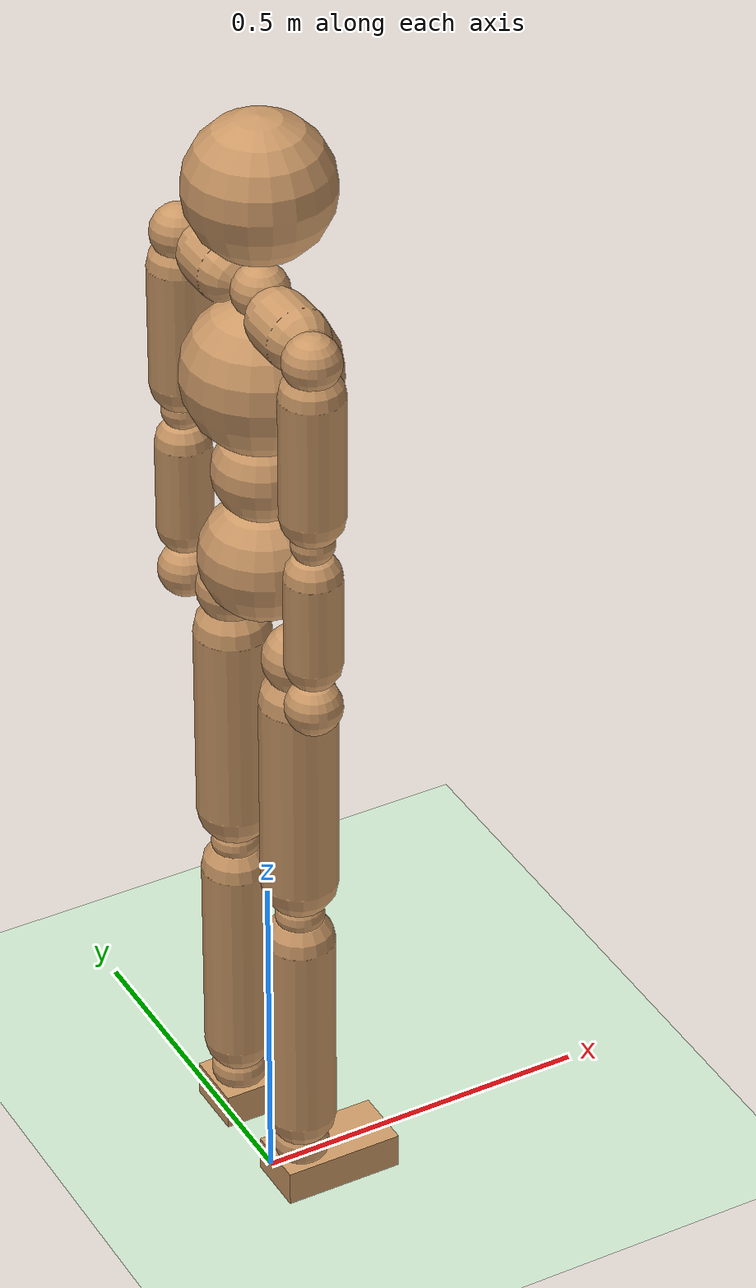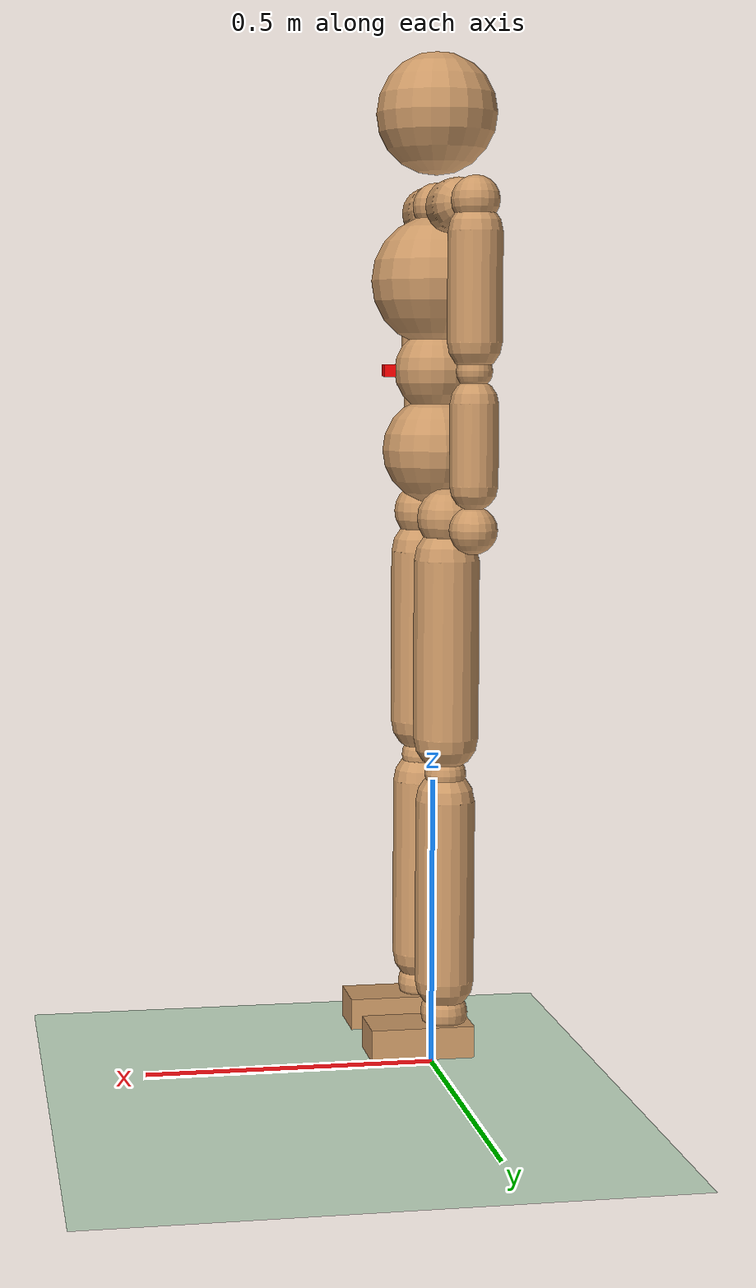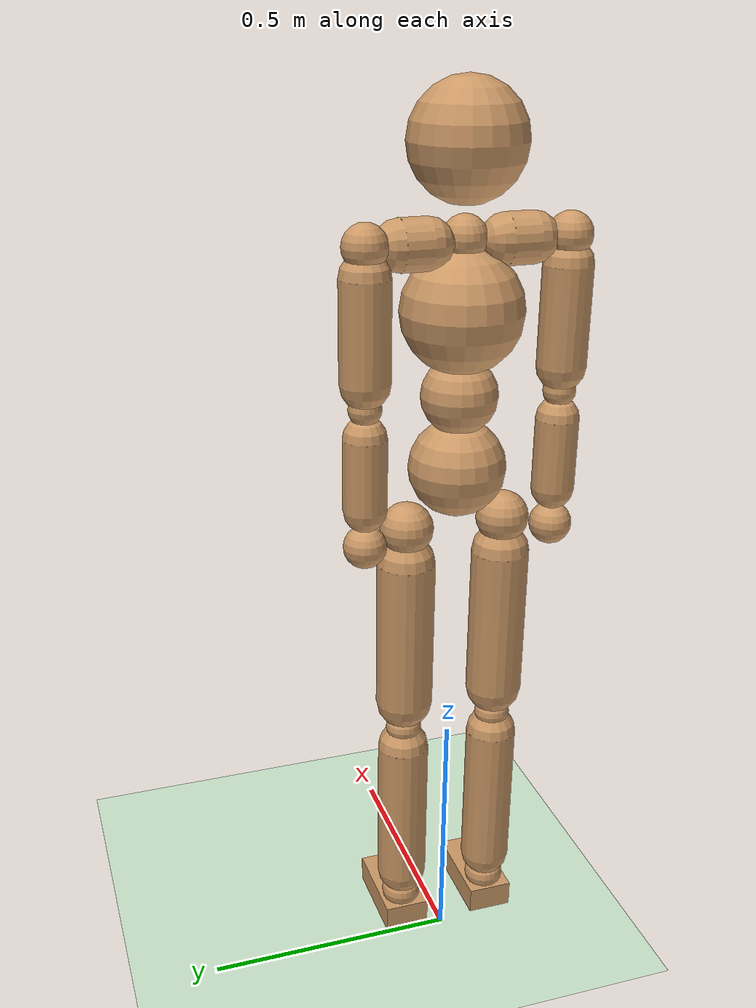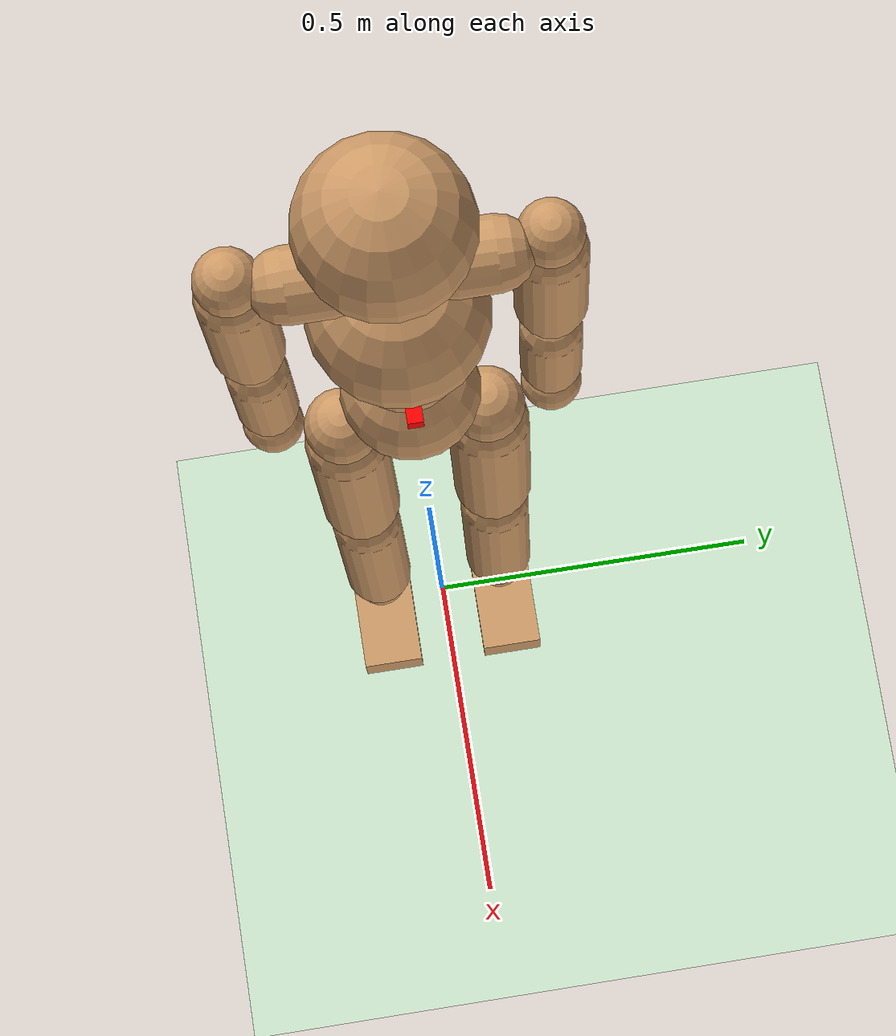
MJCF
<mujoco model="humanoid">
    <compiler angle="degree" inertiafromgeom="true"/>
    <default>
        <joint limited="true" armature="0.02" damping="5" stiffness="10"/>
        <geom conaffinity="1" condim="1" contype="1" margin="0.001" material="geom" rgba="0.8 0.6 .4 1"/>
        <site material="geom" rgba="0.8 0.6 .4 1"/>
        <motor ctrllimited="true" ctrlrange="-1.0 1.0"/>
    </default>
    <option integrator="RK4" iterations="50" solver="PGS" timestep="0.002">
    </option>
    <asset>
        <texture builtin="gradient" height="100" rgb1=".4 .5 .6" rgb2="0 0 0" type="skybox" width="100"/>
        <texture builtin="flat" height="1278" mark="cross" markrgb="1 1 1" name="texgeom" random="0.01" rgb1="0.8 0.6 0.4" rgb2="0.8 0.6 0.4" type="cube" width="127"/>
        <texture builtin="checker" height="100" name="texplane" rgb1="0 0 0" rgb2="0.8 0.8 0.8" type="2d" width="100"/>
        <material name="MatPlane" reflectance="0.5" shininess="1" specular="1" texrepeat="60 60" texture="texplane"/>
        <material name="geom" texture="texgeom" texuniform="true"/>
    </asset>
    <worldbody>
        <geom condim="3" friction="1 .1 .1" material="MatPlane" name="floor" pos="0 0 0" rgba="0.8 0.9 0.8 1" size="20 20 0.125" type="plane"/>
        <body name="root" pos="0 0 1">
            <geom name="root" mass="2.5" pos="0 0 0.07" size=".09" type="sphere"/>
            <light name="tracking_light" pos="0 0 7" dir="0 0 -1" mode="trackcom"/>
            <camera name="back" pos="0 3 2.4" xyaxes="-1 0 0 0 -1 2" mode="trackcom"/>
            <camera name="side" pos="-3 0 2.4" xyaxes="0 -1 0 1 0 2" mode="trackcom"/>
            <joint armature="0" damping="0" limited="false" name="root" pos="0 0 0" stiffness="0" type="free"/>
            <site name="joint_waist" pos="0 0 0.205" size="0.07" type="sphere"/>
            <site name="joint_front_x" rgba='1 0 0 1' pos="0.08 0 0.205" size="0.01 0.01 0.01" type="box"/>
            <body name="chest" pos="0 0 0.236151">
                <geom name="chest" mass="3.0" pos="0 0 0.12" size=".11" type="sphere"/>
                <joint name="chest_x" axis="1 0 0" pos="0 0 0" range="-68.75 68.75" type="hinge"/>
                <joint name="chest_y" axis="0 1 0" pos="0 0 0" range="-68.75 68.75" type="hinge"/>
                <joint name="chest_z" axis="0 0 1" pos="0 0 0" range="-68.75 68.75" type="hinge"/>
                <body name="neck" pos="0 0 0.223894">
                    <geom name="neck" mass="2.0" pos="0 0 0.175" size=".1025" type="sphere"/>
                    <joint name="neck_x" axis="1 0 0" pos="0 0 0" range="-40 40" type="hinge"/>
                    <joint name="neck_y" axis="0 1 0" pos="0 0 0" range="-57.3 57.3" type="hinge"/>
                    <joint name="neck_z" axis="0 0 1" pos="0 0 0" range="-57.3 57.3" type="hinge"/>
                    <site name="joint_neck" pos="0 0 0.02" size="0.04" type="sphere"/>
                </body>
                <site pos="-0.011 -0.095 0.24" euler="-90 0 0" name="right_clavicle" size="0.045 0.025" type="capsule"/>
                <body name="right_shoulder" pos="-0.02405 -0.18311 0.2435">
                    <geom fromto="0 0 -0.05 0 0 -0.23" name="right_shoulder" mass="1.5" size="0.045" type="capsule"/>
                    <site name="joint_right_shoulder" pos="0 0 0" size="0.04" type="sphere"/>
                    <joint name="right_shoulder_x" axis="1 0 0" pos="0 0 0" range="-170 28.65" type="hinge"/>
                    <joint name="right_shoulder_y" axis="0 1 0" pos="0 0 0" range="-180.0 40.11" type="hinge"/>
                    <joint name="right_shoulder_z" axis="0 0 1" pos="0 0 0" range="-85.94 85.94" type="hinge"/>
                    <body name="right_elbow" pos="0 0 -0.274788">
                        <geom fromto="0 0 -0.0525 0 0 -0.1875" name="right_elbow" mass="1.0" size="0.04" type="capsule"/>
                        <joint axis="0 -1 0" name="right_elbow" pos="0.028 0 0" range="0 140" type="hinge"/>
                        <site name="joint_right_elbow" pos="0 0 0" size="0.03" type="sphere"/>
                        <geom name="right_wrist" mass="0.5" pos="0 0 -0.258947" size="0.04" type="sphere"/>
                    </body>
                </body>
                <site name="left_clavicle" euler="-90 0 0" pos="-0.011 0.095 0.24" size="0.045 0.025" type="capsule"/>
                <body name="left_shoulder" pos="-0.02405 0.18311 0.2435">
                    <geom fromto="0 0 -0.05 0 0 -0.23" name="left_shoulder" mass="1.5" size="0.045" type="capsule"/>
                    <joint name="left_shoulder_x" axis="1 0 0" pos="0 0 0" range="-28.65 170"  type="hinge"/>
                    <joint name="left_shoulder_y" axis="0 1 0" pos="0 0 0" range="-180 40.11"  type="hinge"/>
                    <joint name="left_shoulder_z" axis="0 0 1" pos="0 0 0" range="-85.94 85.94"  type="hinge"/>
                    <site name="joint_left_shoulder" pos="0 0 0" size="0.04" type="sphere"/>
                    <body name="left_elbow" pos="0 0 -0.274788">
                        <geom fromto="0 0 -0.0525 0 0 -0.1875" name="left_elbow" mass="1.0" size="0.04" type="capsule"/>
                        <joint axis="0 -1 0" name="left_elbow" pos="0.028 0 0" range="0 140" type="hinge"/>
                        <site name="joint_left_elbow" pos="0 0 0" size="0.03" type="sphere"/>
                        <geom name="left_wrist" mass="0.5" pos="0 0 -0.258947" size="0.04" type="sphere"/>
                    </body>
                </body>
            </body>
            <body name="right_hip" pos="0 -0.094887 -0.05">
                <geom fromto="0 0 -0.06 0 0 -0.36" name="right_hip" mass="4.5" size="0.055" type="capsule"/>
                <site name="joint_right_hip" pos="0 0 0.01" size="0.05" type="sphere"/>
                <joint name="right_hip_x" axis="1 0 0" pos="0 0 0" range="-68.75 68.75" type="hinge"/>
                <joint name="right_hip_y" axis="0 1 0" pos="0.02 0 0" range="-140 80" type="hinge"/>
                <joint name="right_hip_z" axis="0 0 1" pos="0 0 0" range="-57.3 57.3" type="hinge"/>
                <body name="right_knee" pos="0 0 -0.421546">
                    <geom fromto="0 0 -0.045 0 0 -0.355" name="right_knee" mass="3.0" size="0.05" type="capsule"/>
                    <site name="joint_right_knee" pos="0 0 0" size="0.035" type="sphere"/>
                    <joint axis="0 -1 0" name="right_knee" pos="-0.035 0 0" range="-130 0" type="hinge"/>
                    <body name="right_ankle" pos="0 0 -0.40987">
                        <geom name="right_ankle" mass="1.0" pos="0.045 0 -0.0425" size="0.088 0.045 0.027" type="box"/>
                        <site name="joint_right_ankle" pos="0 0 0" size="0.04" type="sphere"/>
                        <joint name="right_ankle_x" axis="1 0 0" pos="0 0 0" range="-40 40" type="hinge"/>
                        <joint name="right_ankle_y" axis="0 1 0" pos="-0.02 0 0" range="-50.0 80.0" type="hinge"/>
                        <joint name="right_ankle_z" axis="0 0 1" pos="0 0 0" range="-20 20" type="hinge"/>
                    </body>
                </body>
            </body>
            <body name="left_hip" pos="0 0.094887 -0.05">
                <geom fromto="0 0 -0.06 0 0 -0.36" name="left_hip" mass="4.5" size="0.055" type="capsule"/>
                <site name="joint_left_hip" pos="0 0 0.01" size="0.05" type="sphere"/>
                <joint name="left_hip_x" axis="1 0 0" pos="0 0 0" range="-68.75 68.75" type="hinge"/>
                <joint name="left_hip_y" axis="0 1 0" pos="0.02 0 0" range="-140 80" type="hinge"/>
                <joint name="left_hip_z" axis="0 0 1" pos="0 0 0" range="-57.3 57.3" type="hinge"/>
                <body name="left_knee" pos="0 0 -0.421546">
                    <geom fromto="0 0 -0.045 0 0 -0.355" name="left_knee" mass="3.0" size="0.05" type="capsule"/>
                    <site name="joint_left_knee" pos="0 0 0" size="0.035" type="sphere"/>
                    <joint axis="0 -1 0" name="left_knee" pos="-0.035 0 0" range="-130 0" type="hinge"/>
                    <body name="left_ankle" pos="0 0 -0.40987">
                        <geom name="left_ankle" mass="1.0" pos="0.045 0 -0.0425" size="0.088 0.045 0.027" type="box"/>
                        <joint name="left_ankle_x" axis="1 0 0" pos="0 0 0" range="-57.3 57.3" type="hinge"/>
                        <joint name="left_ankle_y" axis="0 1 0" pos="-0.02 0 0" range="-50.0 80.0" type="hinge"/>
                        <joint name="left_ankle_z" axis="0 0 1" pos="0 0 0" range="-20 20" type="hinge"/>
                        <site name="joint_left_ankle" pos="0 0 0" size="0.04" type="sphere"/>
                    </body>
                </body>
            </body>
        </body>
    </worldbody>

    <actuator>
        <motor gear="10" joint="chest_x" name="chest_x"/>
        <motor gear="10" joint="chest_y" name="chest_y"/>
        <motor gear="10" joint="chest_z" name="chest_z"/>
        <motor gear="10" joint="neck_x" name="neck_x"/>
        <motor gear="10" joint="neck_y" name="neck_y"/>
        <motor gear="10" joint="neck_z" name="neck_z"/>

        <motor gear="10" joint="right_shoulder_x" name="right_shoulder_x"/>
        <motor gear="10" joint="right_shoulder_y" name="right_shoulder_y"/>
        <motor gear="10" joint="right_shoulder_z" name="right_shoulder_z"/>
        <motor gear="10" joint="right_elbow" name="right_elbow"/>

        <motor gear="10" joint="left_shoulder_x" name="left_shoulder_x"/>
        <motor gear="10" joint="left_shoulder_y" name="left_shoulder_y"/>
        <motor gear="10" joint="left_shoulder_z" name="left_shoulder_z"/>
        <motor gear="10" joint="left_elbow" name="left_elbow"/>

        <motor gear="100" joint="right_hip_x" name="right_hip_x"/>
        <motor gear="100" joint="right_hip_y" name="right_hip_y"/>
        <motor gear="100" joint="right_hip_z" name="right_hip_z"/>

        <motor gear="100" joint="right_knee" name="right_knee"/>
        <motor gear="10" joint="right_ankle_x" name="right_ankle_x"/>
        <motor gear="10" joint="right_ankle_y" name="right_ankle_y"/>
        <motor gear="10" joint="right_ankle_z" name="right_ankle_z"/>

        <motor gear="100" joint="left_hip_x" name="left_hip_x"/>
        <motor gear="100" joint="left_hip_y" name="left_hip_y"/>
        <motor gear="100" joint="left_hip_z" name="left_hip_z"/>

        <motor gear="100" joint="left_knee" name="left_knee"/>
        <motor gear="10" joint="left_ankle_x" name="left_ankle_x"/>
        <motor gear="10" joint="left_ankle_y" name="left_ankle_y"/>
        <motor gear="10" joint="left_ankle_z" name="left_ankle_z"/>
    </actuator>

</mujoco>
